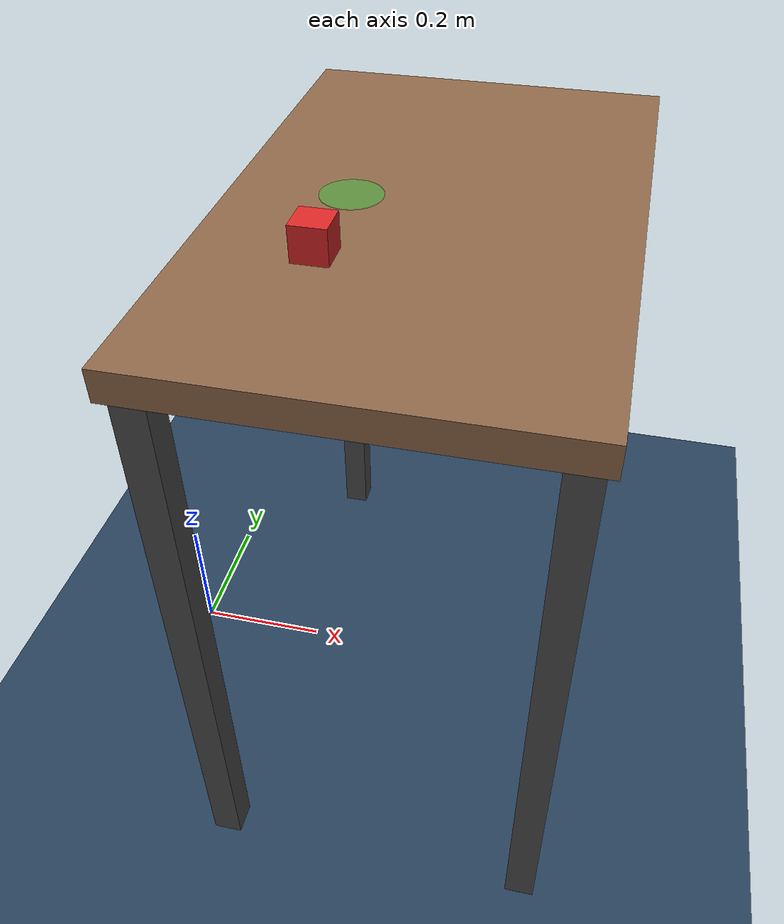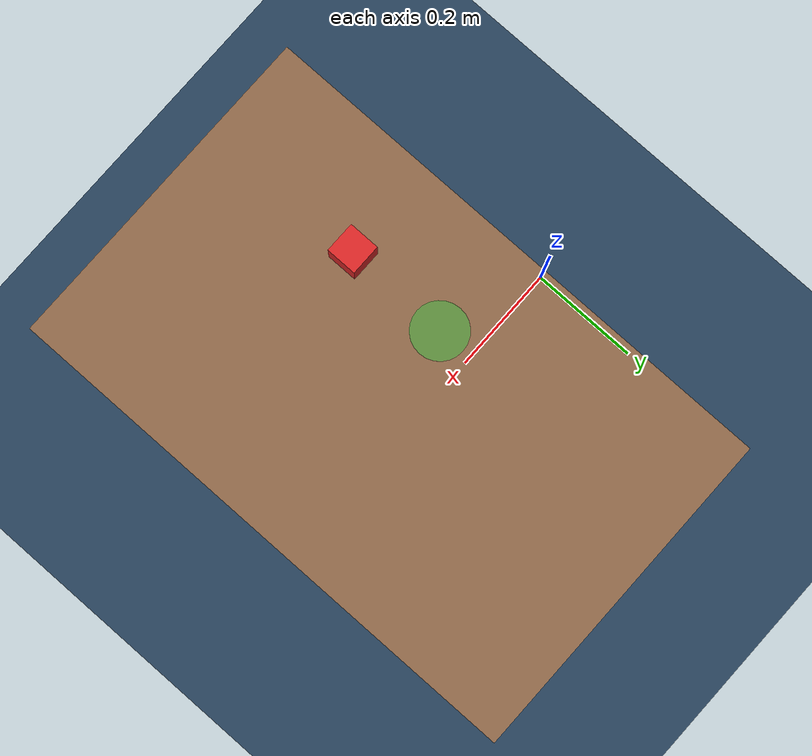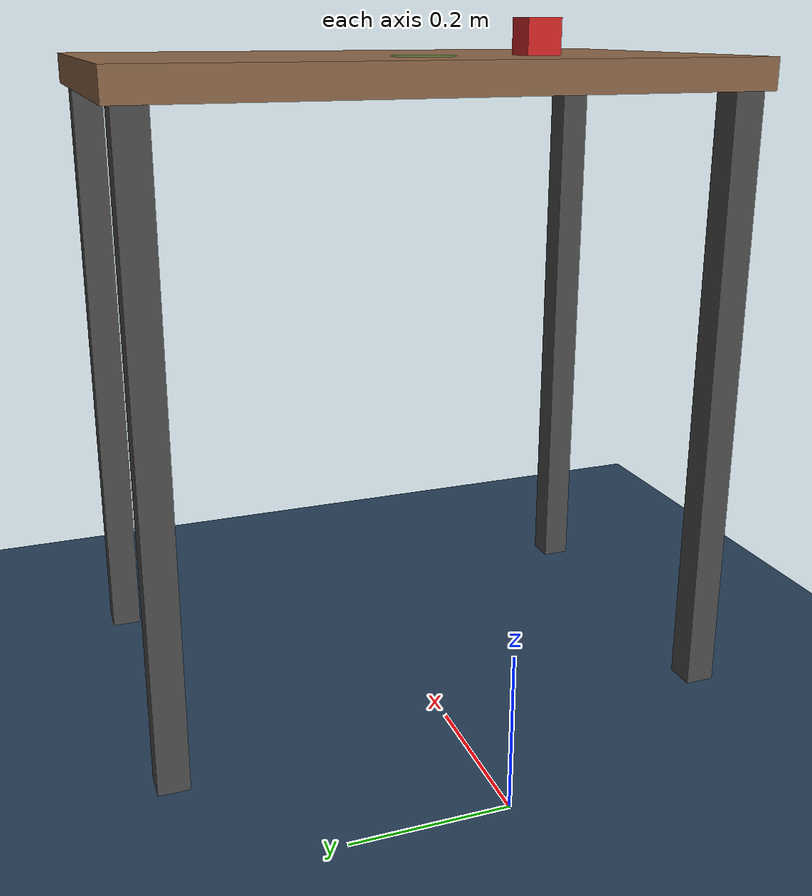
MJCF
<mujoco model="g1_table_scene">
  <compiler angle="radian"/>

  <!-- timestep は config.SIM_TIMESTEP と一致させる。把持の安定性のため elliptic cone + impratio を使う -->
  <option timestep="0.002" integrator="implicitfast" cone="elliptic" impratio="10"/>

  <visual>
    <headlight diffuse="0.6 0.6 0.6" ambient="0.3 0.3 0.3" specular="0 0 0"/>
    <rgba haze="0.15 0.25 0.35 1"/>
    <global azimuth="160" elevation="-25" offwidth="1280" offheight="960"/>
  </visual>

  <asset>
    <texture type="skybox" builtin="gradient" rgb1="0.3 0.5 0.7" rgb2="0 0 0" width="512" height="3072"/>
    <texture type="2d" name="groundplane" builtin="checker" mark="edge" rgb1="0.2 0.3 0.4" rgb2="0.1 0.2 0.3"
      markrgb="0.8 0.8 0.8" width="300" height="300"/>
    <material name="groundplane" texture="groundplane" texuniform="true" texrepeat="5 5" reflectance="0.2"/>
    <material name="table" rgba="0.55 0.4 0.28 1"/>
    <material name="table_leg" rgba="0.3 0.3 0.3 1"/>
    <material name="cube" rgba="0.85 0.15 0.15 1"/>
    <material name="target" rgba="0.1 0.8 0.2 0.4"/>
  </asset>

  <worldbody>
    <light pos="0.5 0 3.0" dir="0 0 -1" directional="true"/>
    <light pos="1.5 -1.0 2.5" dir="-0.6 0.4 -0.7" diffuse="0.3 0.3 0.3"/>
    <geom name="floor" size="0 0 0.05" type="plane" material="groundplane"/>

    <!-- 机: 幅(y) 0.8m × 奥行(x) 0.5m、天板上面 z=0.85m、手前の縁 x=0.15m -->
    <body name="table" pos="0.40 0 0">
      <geom name="table_top" type="box" size="0.25 0.40 0.02" pos="0 0 0.83" material="table"
        friction="1 0.005 0.0001"/>
      <geom name="table_leg_fl" type="box" size="0.02 0.02 0.405" pos="-0.22 0.37 0.405" material="table_leg"/>
      <geom name="table_leg_fr" type="box" size="0.02 0.02 0.405" pos="-0.22 -0.37 0.405" material="table_leg"/>
      <geom name="table_leg_bl" type="box" size="0.02 0.02 0.405" pos="0.22 0.37 0.405" material="table_leg"/>
      <geom name="table_leg_br" type="box" size="0.02 0.02 0.405" pos="0.22 -0.37 0.405" material="table_leg"/>
    </body>

    <!-- キューブ: 一辺 4.5cm、質量 75g、摩擦高め。初期位置は机上（天板上面 + 半辺） -->
    <body name="cube" pos="0.30 -0.15 0.8725">
      <freejoint name="cube_freejoint"/>
      <geom name="cube" type="box" size="0.0225 0.0225 0.0225" mass="0.075" material="cube"
        friction="1.5 0.005 0.0001" condim="4"/>
    </body>

    <!-- 目標マーカー: 衝突なしの半透明円盤。mocap ボディなので data.mocap_pos で動かす -->
    <body name="target" mocap="true" pos="0.30 0 0.8505">
      <geom name="target" type="cylinder" size="0.04 0.0005" material="target" contype="0" conaffinity="0"/>
    </body>
  </worldbody>
</mujoco>
